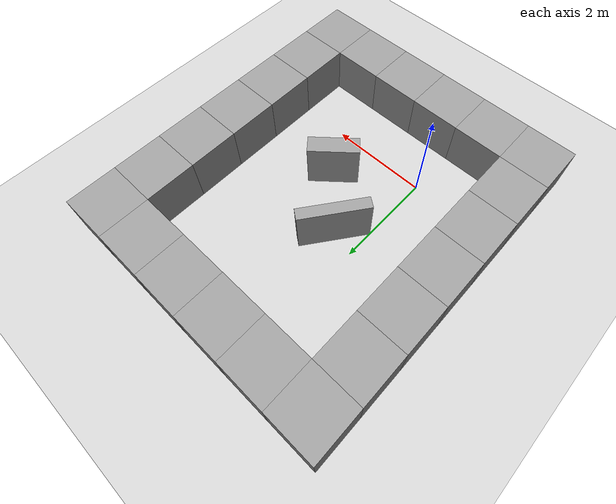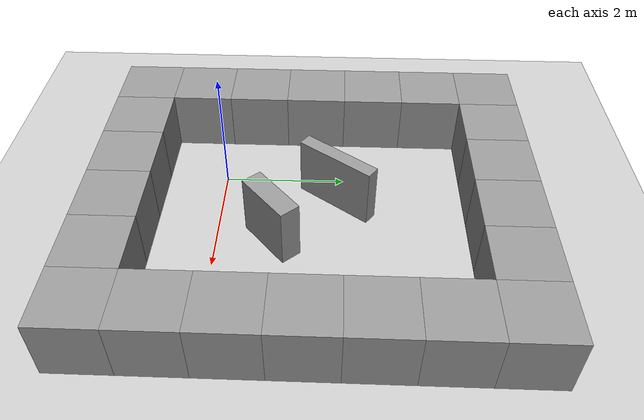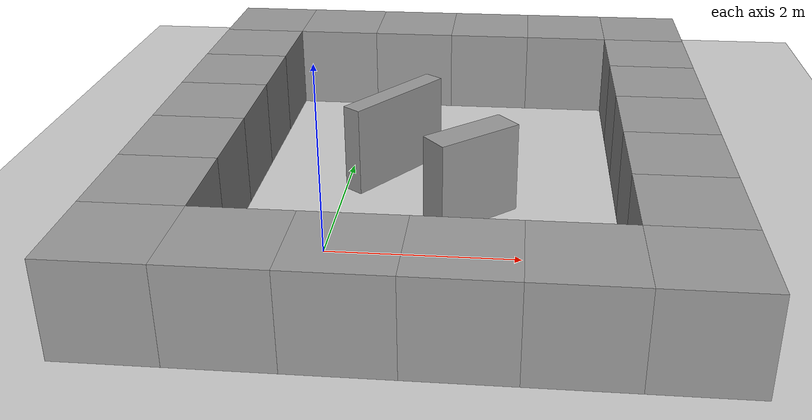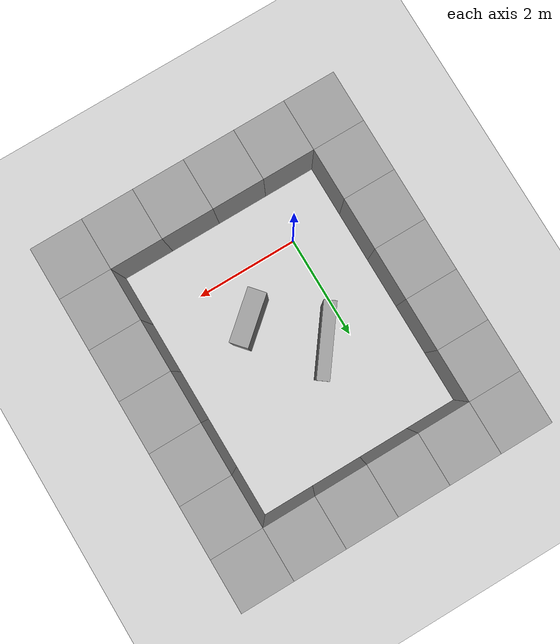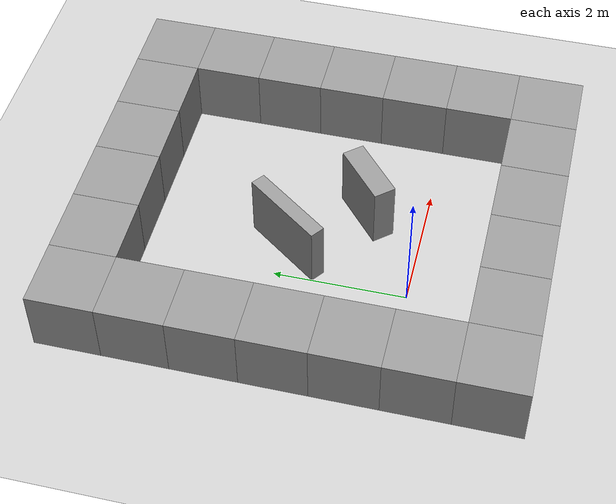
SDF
<sdf version="1.4">
 <world name="default">
  <light name="sun" type="directional">
   <pose>0 0 10 0 -0 0</pose>
   <diffuse>0.8 0.8 0.8 1</diffuse>
   <specular>0.2 0.2 0.2 1</specular>
   <attenuation>
    <range>1000</range>
    <constant>0.9</constant>
    <linear>0.01</linear>
    <quadratic>0.001</quadratic>
   </attenuation>
   <direction>-0.5 0.1 -0.9</direction>
  </light>
  <model name="ground_plane">
   <static>1</static>
   <link name="link">
    <collision name="collision">
     <geometry><plane><normal>0 0 1</normal><size>100 100</size></plane></geometry>
     <surface><friction><ode><mu>100</mu><mu2>50</mu2></ode></friction></surface>
    </collision>
    <visual name="visual">
     <cast_shadows>0</cast_shadows>
     <geometry><plane><normal>0 0 1</normal><size>100 100</size></plane></geometry>
     <material>
      <script><uri>file://media/materials/scripts/gazebo.material</uri><name>Gazebo/Grey</name></script>
     </material>
    </visual>
    <velocity_decay><linear>0</linear><angular>0</angular></velocity_decay>
   </link>
  </model>
  <physics type="ode">
   <max_step_size>0.001</max_step_size>
   <real_time_factor>1</real_time_factor>
   <real_time_update_rate>1000</real_time_update_rate>
   <gravity>0 0 -9.8</gravity>
  </physics>
  <scene><ambient>0.4 0.4 0.4 1</ambient><background>0.7 0.7 0.7 1</background><shadows>1</shadows></scene>
  <spherical_coordinates>
   <surface_model>EARTH_WGS84</surface_model>
   <latitude_deg>0</latitude_deg>
   <longitude_deg>0</longitude_deg>
   <elevation>0</elevation>
   <heading_deg>0</heading_deg>
  </spherical_coordinates>
  <model name="unit_box_1">
   <pose>-1.5 -1.5 0.5 0 0 0</pose>
   <link name="link">
    <inertial>
     <mass>1</mass>
     <inertia><ixx>1</ixx><ixy>0</ixy><ixz>0</ixz><iyy>1</iyy><iyz>0</iyz><izz>1</izz></inertia>
    </inertial>
    <collision name="collision"><geometry><box><size>1 1 1</size></box></geometry></collision>
    <visual name="visual">
     <geometry><box><size>1 1 1</size></box></geometry>
     <material>
      <script><uri>file://media/materials/scripts/gazebo.material</uri><name>Gazebo/Grey</name></script>
     </material>
    </visual>
    <velocity_decay><linear>0</linear><angular>0</angular></velocity_decay>
   </link>
   <static>1</static>
  </model>
  <model name="unit_box_2">
   <pose>-1.5 -0.5 0.5 0 0 0</pose>
   <link name="link">
    <inertial>
     <mass>1</mass>
     <inertia><ixx>1</ixx><ixy>0</ixy><ixz>0</ixz><iyy>1</iyy><iyz>0</iyz><izz>1</izz></inertia>
    </inertial>
    <collision name="collision"><geometry><box><size>1 1 1</size></box></geometry></collision>
    <visual name="visual">
     <geometry><box><size>1 1 1</size></box></geometry>
     <material>
      <script><uri>file://media/materials/scripts/gazebo.material</uri><name>Gazebo/Grey</name></script>
     </material>
    </visual>
    <velocity_decay><linear>0</linear><angular>0</angular></velocity_decay>
   </link>
   <static>1</static>
  </model>
  <model name="unit_box_3">
   <pose>-1.5 0.5 0.5 0 0 0</pose>
   <link name="link">
    <inertial>
     <mass>1</mass>
     <inertia><ixx>1</ixx><ixy>0</ixy><ixz>0</ixz><iyy>1</iyy><iyz>0</iyz><izz>1</izz></inertia>
    </inertial>
    <collision name="collision"><geometry><box><size>1 1 1</size></box></geometry></collision>
    <visual name="visual">
     <geometry><box><size>1 1 1</size></box></geometry>
     <material>
      <script><uri>file://media/materials/scripts/gazebo.material</uri><name>Gazebo/Grey</name></script>
     </material>
    </visual>
    <velocity_decay><linear>0</linear><angular>0</angular></velocity_decay>
   </link>
   <static>1</static>
  </model>
  <model name="unit_box_4">
   <pose>-1.5 1.5 0.5 0 0 0</pose>
   <link name="link">
    <inertial>
     <mass>1</mass>
     <inertia><ixx>1</ixx><ixy>0</ixy><ixz>0</ixz><iyy>1</iyy><iyz>0</iyz><izz>1</izz></inertia>
    </inertial>
    <collision name="collision"><geometry><box><size>1 1 1</size></box></geometry></collision>
    <visual name="visual">
     <geometry><box><size>1 1 1</size></box></geometry>
     <material>
      <script><uri>file://media/materials/scripts/gazebo.material</uri><name>Gazebo/Grey</name></script>
     </material>
    </visual>
    <velocity_decay><linear>0</linear><angular>0</angular></velocity_decay>
   </link>
   <static>1</static>
  </model>
  <model name="unit_box_5">
   <pose>-1.5 2.5 0.5 0 0 0</pose>
   <link name="link">
    <inertial>
     <mass>1</mass>
     <inertia><ixx>1</ixx><ixy>0</ixy><ixz>0</ixz><iyy>1</iyy><iyz>0</iyz><izz>1</izz></inertia>
    </inertial>
    <collision name="collision"><geometry><box><size>1 1 1</size></box></geometry></collision>
    <visual name="visual">
     <geometry><box><size>1 1 1</size></box></geometry>
     <material>
      <script><uri>file://media/materials/scripts/gazebo.material</uri><name>Gazebo/Grey</name></script>
     </material>
    </visual>
    <velocity_decay><linear>0</linear><angular>0</angular></velocity_decay>
   </link>
   <static>1</static>
  </model>
  <model name="unit_box_6">
   <pose>-1.5 3.5 0.5 0 0 0</pose>
   <link name="link">
    <inertial>
     <mass>1</mass>
     <inertia><ixx>1</ixx><ixy>0</ixy><ixz>0</ixz><iyy>1</iyy><iyz>0</iyz><izz>1</izz></inertia>
    </inertial>
    <collision name="collision"><geometry><box><size>1 1 1</size></box></geometry></collision>
    <visual name="visual">
     <geometry><box><size>1 1 1</size></box></geometry>
     <material>
      <script><uri>file://media/materials/scripts/gazebo.material</uri><name>Gazebo/Grey</name></script>
     </material>
    </visual>
    <velocity_decay><linear>0</linear><angular>0</angular></velocity_decay>
   </link>
   <static>1</static>
  </model>
  <model name="unit_box_7">
   <pose>-1.5 4.5 0.5 0 0 0</pose>
   <link name="link">
    <inertial>
     <mass>1</mass>
     <inertia><ixx>1</ixx><ixy>0</ixy><ixz>0</ixz><iyy>1</iyy><iyz>0</iyz><izz>1</izz></inertia>
    </inertial>
    <collision name="collision"><geometry><box><size>1 1 1</size></box></geometry></collision>
    <visual name="visual">
     <geometry><box><size>1 1 1</size></box></geometry>
     <material>
      <script><uri>file://media/materials/scripts/gazebo.material</uri><name>Gazebo/Grey</name></script>
     </material>
    </visual>
    <velocity_decay><linear>0</linear><angular>0</angular></velocity_decay>
   </link>
   <static>1</static>
  </model>
  <model name="unit_box_8">
   <pose>-0.5 -1.5 0.5 0 0 0</pose>
   <link name="link">
    <inertial>
     <mass>1</mass>
     <inertia><ixx>1</ixx><ixy>0</ixy><ixz>0</ixz><iyy>1</iyy><iyz>0</iyz><izz>1</izz></inertia>
    </inertial>
    <collision name="collision"><geometry><box><size>1 1 1</size></box></geometry></collision>
    <visual name="visual">
     <geometry><box><size>1 1 1</size></box></geometry>
     <material>
      <script><uri>file://media/materials/scripts/gazebo.material</uri><name>Gazebo/Grey</name></script>
     </material>
    </visual>
    <velocity_decay><linear>0</linear><angular>0</angular></velocity_decay>
   </link>
   <static>1</static>
  </model>
  <model name="unit_box_9">
   <pose>0.5 -1.5 0.5 0 0 0</pose>
   <link name="link">
    <inertial>
     <mass>1</mass>
     <inertia><ixx>1</ixx><ixy>0</ixy><ixz>0</ixz><iyy>1</iyy><iyz>0</iyz><izz>1</izz></inertia>
    </inertial>
    <collision name="collision"><geometry><box><size>1 1 1</size></box></geometry></collision>
    <visual name="visual">
     <geometry><box><size>1 1 1</size></box></geometry>
     <material>
      <script><uri>file://media/materials/scripts/gazebo.material</uri><name>Gazebo/Grey</name></script>
     </material>
    </visual>
    <velocity_decay><linear>0</linear><angular>0</angular></velocity_decay>
   </link>
   <static>1</static>
  </model>
  <model name="unit_box_10">
   <pose>1.5 -1.5 0.5 0 0 0</pose>
   <link name="link">
    <inertial>
     <mass>1</mass>
     <inertia><ixx>1</ixx><ixy>0</ixy><ixz>0</ixz><iyy>1</iyy><iyz>0</iyz><izz>1</izz></inertia>
    </inertial>
    <collision name="collision"><geometry><box><size>1 1 1</size></box></geometry></collision>
    <visual name="visual">
     <geometry><box><size>1 1 1</size></box></geometry>
     <material>
      <script><uri>file://media/materials/scripts/gazebo.material</uri><name>Gazebo/Grey</name></script>
     </material>
    </visual>
    <velocity_decay><linear>0</linear><angular>0</angular></velocity_decay>
   </link>
   <static>1</static>
  </model>
  <model name="unit_box_11">
   <pose>2.5 -1.5 0.5 0 0 0.0</pose>
   <link name="link">
    <inertial>
     <mass>1</mass>
     <inertia><ixx>1</ixx><ixy>0</ixy><ixz>0</ixz><iyy>1</iyy><iyz>0</iyz><izz>1</izz></inertia>
    </inertial>
    <collision name="collision"><geometry><box><size>1 1 1</size></box></geometry></collision>
    <visual name="visual">
     <geometry><box><size>1 1 1</size></box></geometry>
     <material>
      <script><uri>file://media/materials/scripts/gazebo.material</uri><name>Gazebo/Grey</name></script>
     </material>
    </visual>
    <velocity_decay><linear>0</linear><angular>0</angular></velocity_decay>
   </link>
   <static>1</static>
  </model>
  <model name="unit_box_12">
   <pose>3.5 -1.5 0.5 0 0 0</pose>
   <link name="link">
    <inertial>
     <mass>1</mass>
     <inertia><ixx>1</ixx><ixy>0</ixy><ixz>0</ixz><iyy>1</iyy><iyz>0</iyz><izz>1</izz></inertia>
    </inertial>
    <collision name="collision"><geometry><box><size>1 1 1</size></box></geometry></collision>
    <visual name="visual">
     <geometry><box><size>1 1 1</size></box></geometry>
     <material>
      <script><uri>file://media/materials/scripts/gazebo.material</uri><name>Gazebo/Grey</name></script>
     </material>
    </visual>
    <velocity_decay><linear>0</linear><angular>0</angular></velocity_decay>
   </link>
   <static>1</static>
  </model>
  <model name="unit_box_13">
   <pose>3.5 -0.5 0.5 0 0 0</pose>
   <link name="link">
    <inertial>
     <mass>1</mass>
     <inertia><ixx>1</ixx><ixy>0</ixy><ixz>0</ixz><iyy>1</iyy><iyz>0</iyz><izz>1</izz></inertia>
    </inertial>
    <collision name="collision"><geometry><box><size>1 1 1</size></box></geometry></collision>
    <visual name="visual">
     <geometry><box><size>1 1 1</size></box></geometry>
     <material>
      <script><uri>file://media/materials/scripts/gazebo.material</uri><name>Gazebo/Grey</name></script>
     </material>
    </visual>
    <velocity_decay><linear>0</linear><angular>0</angular></velocity_decay>
   </link>
   <static>1</static>
  </model>
  <model name="unit_box_14">
   <pose>3.5 0.5 0.5 0 0 0</pose>
   <link name="link">
    <inertial>
     <mass>1</mass>
     <inertia><ixx>1</ixx><ixy>0</ixy><ixz>0</ixz><iyy>1</iyy><iyz>0</iyz><izz>1</izz></inertia>
    </inertial>
    <collision name="collision"><geometry><box><size>1 1 1</size></box></geometry></collision>
    <visual name="visual">
     <geometry><box><size>1 1 1</size></box></geometry>
     <material>
      <script><uri>file://media/materials/scripts/gazebo.material</uri><name>Gazebo/Grey</name></script>
     </material>
    </visual>
    <velocity_decay><linear>0</linear><angular>0</angular></velocity_decay>
   </link>
   <static>1</static>
  </model>
  <model name="unit_box_15">
   <pose>3.5 1.5 0.5 0 0 0</pose>
   <link name="link">
    <inertial>
     <mass>1</mass>
     <inertia><ixx>1</ixx><ixy>0</ixy><ixz>0</ixz><iyy>1</iyy><iyz>0</iyz><izz>1</izz></inertia>
    </inertial>
    <collision name="collision"><geometry><box><size>1 1 1</size></box></geometry></collision>
    <visual name="visual">
     <geometry><box><size>1 1 1</size></box></geometry>
     <material>
      <script><uri>file://media/materials/scripts/gazebo.material</uri><name>Gazebo/Grey</name></script>
     </material>
    </visual>
    <velocity_decay><linear>0</linear><angular>0</angular></velocity_decay>
   </link>
   <static>1</static>
  </model>
  <model name="unit_box_16">
   <pose>3.5 2.5 0.5 0 0 0</pose>
   <link name="link">
    <inertial>
     <mass>1</mass>
     <inertia><ixx>1</ixx><ixy>0</ixy><ixz>0</ixz><iyy>1</iyy><iyz>0</iyz><izz>1</izz></inertia>
    </inertial>
    <collision name="collision"><geometry><box><size>1 1 1</size></box></geometry></collision>
    <visual name="visual">
     <geometry><box><size>1 1 1</size></box></geometry>
     <material>
      <script><uri>file://media/materials/scripts/gazebo.material</uri><name>Gazebo/Grey</name></script>
     </material>
    </visual>
    <velocity_decay><linear>0</linear><angular>0</angular></velocity_decay>
   </link>
   <static>1</static>
  </model>
  <model name="unit_box_17">
   <pose>3.5 3.5 0.5 0 0 0</pose>
   <link name="link">
    <inertial>
     <mass>1</mass>
     <inertia><ixx>1</ixx><ixy>0</ixy><ixz>0</ixz><iyy>1</iyy><iyz>0</iyz><izz>1</izz></inertia>
    </inertial>
    <collision name="collision"><geometry><box><size>1 1 1</size></box></geometry></collision>
    <visual name="visual">
     <geometry><box><size>1 1 1</size></box></geometry>
     <material>
      <script><uri>file://media/materials/scripts/gazebo.material</uri><name>Gazebo/Grey</name></script>
     </material>
    </visual>
    <velocity_decay><linear>0</linear><angular>0</angular></velocity_decay>
   </link>
   <static>1</static>
  </model>
  <model name="unit_box_18">
   <pose>3.5 4.5 0.5 0 0 0</pose>
   <link name="link">
    <inertial>
     <mass>1</mass>
     <inertia><ixx>1</ixx><ixy>0</ixy><ixz>0</ixz><iyy>1</iyy><iyz>0</iyz><izz>1</izz></inertia>
    </inertial>
    <collision name="collision"><geometry><box><size>1 1 1</size></box></geometry></collision>
    <visual name="visual">
     <geometry><box><size>1 1 1</size></box></geometry>
     <material>
      <script><uri>file://media/materials/scripts/gazebo.material</uri><name>Gazebo/Grey</name></script>
     </material>
    </visual>
    <velocity_decay><linear>0</linear><angular>0</angular></velocity_decay>
   </link>
   <static>1</static>
  </model>
  <model name="unit_box_19">
   <pose>-0.5 4.5 0.5 0 0 0</pose>
   <link name="link">
    <inertial>
     <mass>1</mass>
     <inertia><ixx>1</ixx><ixy>0</ixy><ixz>0</ixz><iyy>1</iyy><iyz>0</iyz><izz>1</izz></inertia>
    </inertial>
    <collision name="collision"><geometry><box><size>1 1 1</size></box></geometry></collision>
    <visual name="visual">
     <geometry><box><size>1 1 1</size></box></geometry>
     <material>
      <script><uri>file://media/materials/scripts/gazebo.material</uri><name>Gazebo/Grey</name></script>
     </material>
    </visual>
    <velocity_decay><linear>0</linear><angular>0</angular></velocity_decay>
   </link>
   <static>1</static>
  </model>
  <model name="unit_box_20">
   <pose>0.5 4.5 0.5 0 0 0</pose>
   <link name="link">
    <inertial>
     <mass>1</mass>
     <inertia><ixx>1</ixx><ixy>0</ixy><ixz>0</ixz><iyy>1</iyy><iyz>0</iyz><izz>1</izz></inertia>
    </inertial>
    <collision name="collision"><geometry><box><size>1 1 1</size></box></geometry></collision>
    <visual name="visual">
     <geometry><box><size>1 1 1</size></box></geometry>
     <material>
      <script><uri>file://media/materials/scripts/gazebo.material</uri><name>Gazebo/Grey</name></script>
     </material>
    </visual>
    <velocity_decay><linear>0</linear><angular>0</angular></velocity_decay>
   </link>
   <static>1</static>
  </model>
  <model name="unit_box_21">
   <pose>1.5 4.5 0.5 0 0 0</pose>
   <link name="link">
    <inertial>
     <mass>1</mass>
     <inertia><ixx>1</ixx><ixy>0</ixy><ixz>0</ixz><iyy>1</iyy><iyz>0</iyz><izz>1</izz></inertia>
    </inertial>
    <collision name="collision"><geometry><box><size>1 1 1</size></box></geometry></collision>
    <visual name="visual">
     <geometry><box><size>1 1 1</size></box></geometry>
     <material>
      <script><uri>file://media/materials/scripts/gazebo.material</uri><name>Gazebo/Grey</name></script>
     </material>
    </visual>
    <velocity_decay><linear>0</linear><angular>0</angular></velocity_decay>
   </link>
   <static>1</static>
  </model>
  <model name="unit_box_22">
   <pose>2.5 4.5 0.5 0 0 0</pose>
   <link name="link">
    <inertial>
     <mass>1</mass>
     <inertia><ixx>1</ixx><ixy>0</ixy><ixz>0</ixz><iyy>1</iyy><iyz>0</iyz><izz>1</izz></inertia>
    </inertial>
    <collision name="collision"><geometry><box><size>1 1 1</size></box></geometry></collision>
    <visual name="visual">
     <geometry><box><size>1 1 1</size></box></geometry>
     <material>
      <script><uri>file://media/materials/scripts/gazebo.material</uri><name>Gazebo/Grey</name></script>
     </material>
    </visual>
    <velocity_decay><linear>0</linear><angular>0</angular></velocity_decay>
   </link>
   <static>1</static>
  </model>
  <model name="unit_box_23">
   <pose>0.498323 1.90462 0.5 0 0 -0.636105</pose>
   <link name="link">
    <inertial>
     <mass>1</mass>
     <inertia><ixx>1</ixx><ixy>0</ixy><ixz>0</ixz><iyy>1</iyy><iyz>0</iyz><izz>1</izz></inertia>
    </inertial>
    <collision name="collision"><geometry><box><size>0.228816 1.36602 1</size></box></geometry></collision>
    <visual name="visual">
     <geometry><box><size>0.228816 1.36602 1</size></box></geometry>
     <material>
      <script><uri>file://media/materials/scripts/gazebo.material</uri><name>Gazebo/Grey</name></script>
     </material>
    </visual>
    <velocity_decay><linear>0</linear><angular>0</angular></velocity_decay>
   </link>
   <static>1</static>
  </model>
  <model name="unit_box_24">
   <pose>1.43552 0.893271 0.499998 3e-06 1e-06 -0.861543</pose>
   <link name="link">
    <inertial>
     <mass>1</mass>
     <inertia><ixx>1</ixx><ixy>0</ixy><ixz>0</ixz><iyy>1</iyy><iyz>0</iyz><izz>1</izz></inertia>
    </inertial>
    <collision name="collision"><geometry><box><size>0.340788 0.994194 1</size></box></geometry></collision>
    <visual name="visual">
     <geometry><box><size>0.340788 0.994194 1</size></box></geometry>
     <material>
      <script><uri>file://media/materials/scripts/gazebo.material</uri><name>Gazebo/Grey</name></script>
     </material>
    </visual>
    <velocity_decay><linear>0</linear><angular>0</angular></velocity_decay>
   </link>
   <static>1</static>
  </model>
 </world>
</sdf>
